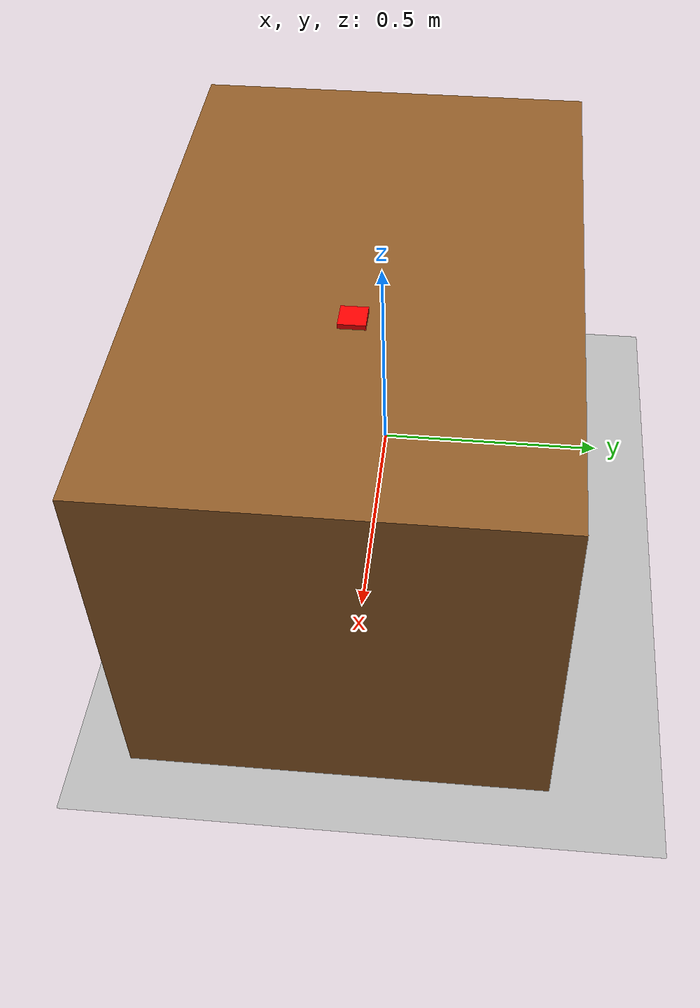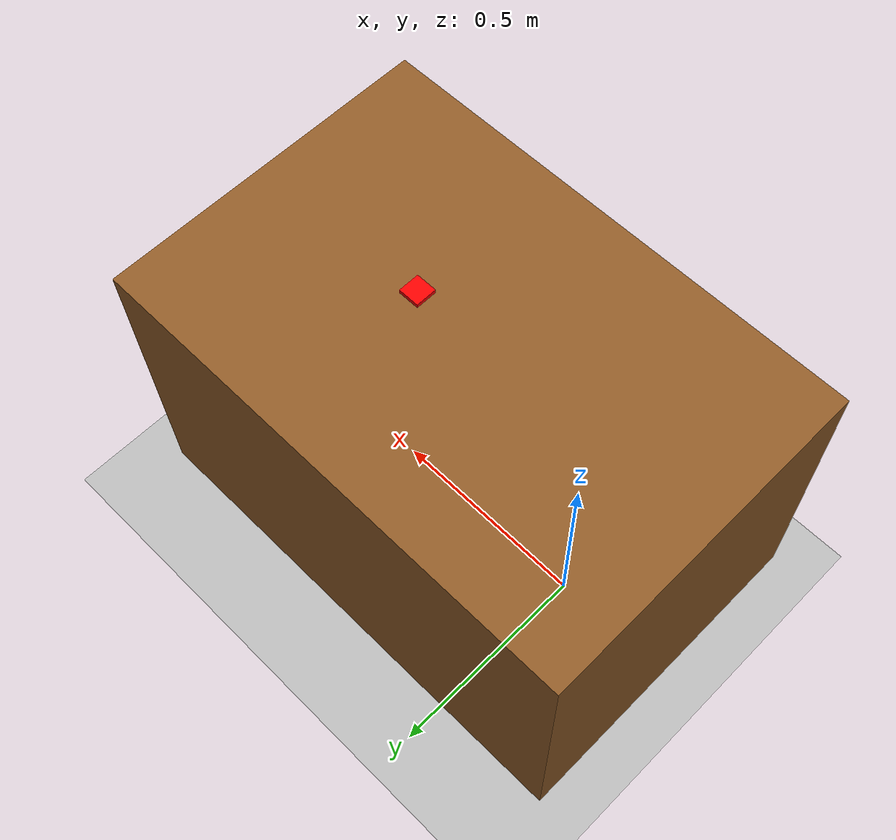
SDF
<?xml version="1.0"?>
<sdf version="1.10">
  <world name="wound_tracking_world">

    <!-- ── Simulation plugins ────────────────────────────────────────────── -->
    <plugin filename="gz-sim-physics-system"
            name="gz::sim::systems::Physics"/>
    <plugin filename="gz-sim-user-commands-system"
            name="gz::sim::systems::UserCommands"/>
    <plugin filename="gz-sim-scene-broadcaster-system"
            name="gz::sim::systems::SceneBroadcaster"/>
    <plugin filename="gz-sim-contact-system"
            name="gz::sim::systems::Contact"/>

    <!-- Sensors system: required for the RGBD camera to render -->
    <plugin filename="gz-sim-sensors-system"
            name="gz::sim::systems::Sensors">
      <render_engine>ogre2</render_engine>
    </plugin>

    <!-- ── Lighting ──────────────────────────────────────────────────────── -->
    <light type="directional" name="sun">
      <cast_shadows>true</cast_shadows>
      <pose>0 0 10 0 0 0</pose>
      <diffuse>0.9 0.9 0.9 1</diffuse>
      <specular>0.3 0.3 0.3 1</specular>
      <direction>-0.5 0.1 -0.9</direction>
    </light>

    <!-- ── Ground plane ──────────────────────────────────────────────────── -->
    <model name="ground_plane">
      <static>true</static>
      <link name="link">
        <collision name="collision">
          <geometry>
            <plane><normal>0 0 1</normal><size>20 20</size></plane>
          </geometry>
        </collision>
        <visual name="visual">
          <geometry>
            <plane><normal>0 0 1</normal><size>20 20</size></plane>
          </geometry>
          <material>
            <ambient>0.7 0.7 0.7 1</ambient>
            <diffuse>0.7 0.7 0.7 1</diffuse>
          </material>
        </visual>
      </link>
    </model>

    <!-- ── Table ─────────────────────────────────────────────────────────── -->
    <model name="table">
      <static>true</static>
      <pose>0.3 0 0.375 0 0 0</pose>
      <link name="link">
        <collision name="collision">
          <geometry><box><size>1.2 0.8 0.75</size></box></geometry>
        </collision>
        <visual name="visual">
          <geometry><box><size>1.2 0.8 0.75</size></box></geometry>
          <material>
            <ambient>0.55 0.35 0.15 1</ambient>
            <diffuse>0.55 0.35 0.15 1</diffuse>
            <specular>0.05 0.05 0.05 1</specular>
          </material>
        </visual>
      </link>
    </model>

    <!-- ── Red target cube ────────────────────────────────────────────────── -->
    <model name="red_target">
      <static>true</static>
      <pose>0.45 0.0 0.755 0 0 0</pose>
      <link name="link">
        <collision name="collision">
          <geometry><box><size>0.05 0.05 0.01</size></box></geometry>
        </collision>
        <visual name="visual">
          <geometry><box><size>0.05 0.05 0.01</size></box></geometry>
          <material>
            <ambient>1.0 0.0 0.0 1</ambient>
            <diffuse>1.0 0.0 0.0 1</diffuse>
            <specular>0.1 0.0 0.0 1</specular>
          </material>
        </visual>
      </link>
    </model>

  </world>
</sdf>
